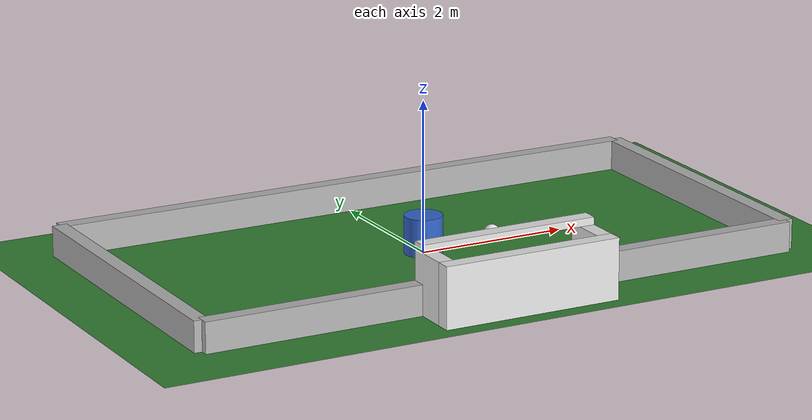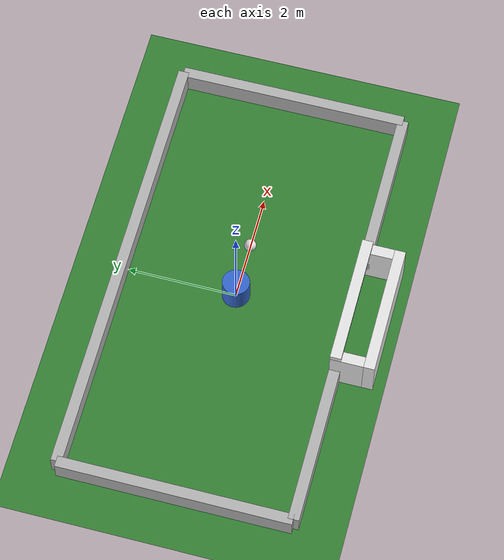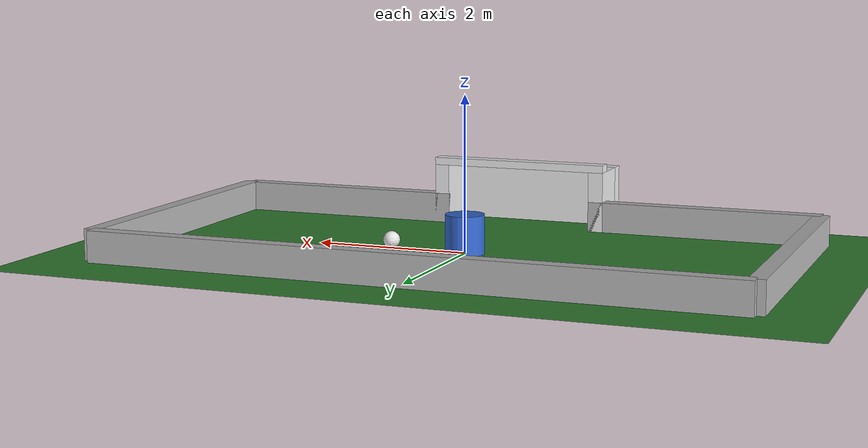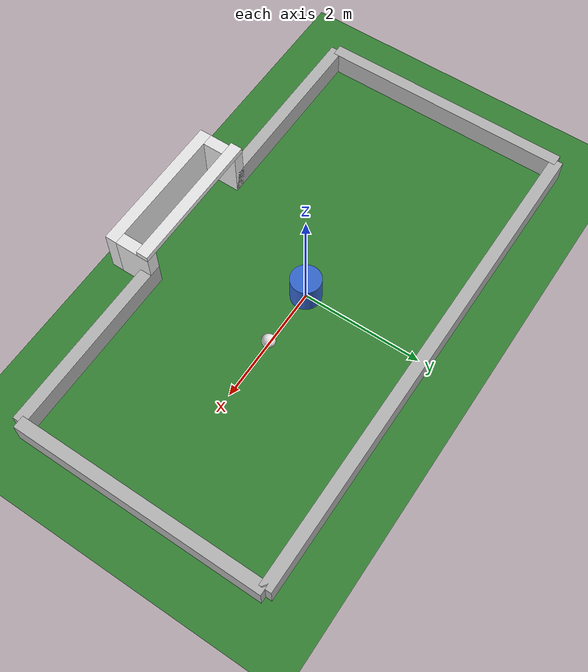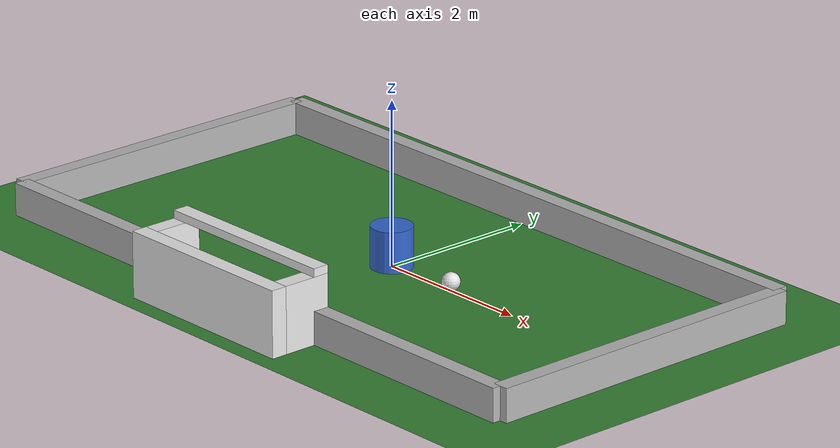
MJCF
<mujoco model="soccer_3d_cylinder">
  <option timestep="0.002" gravity="0 0 -9.81" integrator="implicitfast"/>

  <worldbody>
    <camera
      name="overview"
      pos="0 0 7"
      xyaxes="1 0 0 0 1 0"
      fovy="45"
    />

    <geom
      name="ground"
      type="plane"
      size="5 3 0.1"
      rgba="0.2 0.5 0.2 1"
    />

    <geom
      name="wall_left"
      type="box"
      pos="-4.1 0 0.2"
      size="0.1 2.1 0.2"
      rgba="0.7 0.7 0.7 1"
    />
    <geom
      name="wall_right"
      type="box"
      pos="4.1 0 0.2"
      size="0.1 2.1 0.2"
      rgba="0.7 0.7 0.7 1"
    />
    <geom
      name="wall_bottom_left"
      type="box"
      pos="-2.55 -2.1 0.2"
      size="1.55 0.1 0.2"
      rgba="0.7 0.7 0.7 1"
    />
    <geom
      name="wall_bottom_right"
      type="box"
      pos="2.55 -2.1 0.2"
      size="1.55 0.1 0.2"
      rgba="0.7 0.7 0.7 1"
    />
    <geom
      name="wall_top"
      type="box"
      pos="0 2.1 0.2"
      size="4.1 0.1 0.2"
      rgba="0.7 0.7 0.7 1"
    />

    <geom
      name="goal_left_side"
      type="box"
      pos="-1.1 -2.3 0.4"
      size="0.1 0.3 0.4"
      rgba="0.9 0.9 0.9 1"
    />
    <geom
      name="goal_right_side"
      type="box"
      pos="1.1 -2.3 0.4"
      size="0.1 0.3 0.4"
      rgba="0.9 0.9 0.9 1"
    />
    <geom
      name="goal_back"
      type="box"
      pos="0 -2.7 0.4"
      size="1.2 0.1 0.4"
      rgba="0.9 0.9 0.9 1"
    />
    <geom
      name="goal_crossbar"
      type="box"
      pos="0 -2.1 0.85"
      size="1.2 0.1 0.05"
      rgba="0.9 0.9 0.9 1"
    />

    <body name="agent" pos="0 0 0.25">
      <joint name="agent_x" type="slide" axis="1 0 0"/>
      <joint name="agent_y" type="slide" axis="0 1 0"/>
      <geom
        name="agent_geom"
        type="cylinder"
        size="0.25 0.25"
        mass="20"
        rgba="0.2 0.4 0.8 1"
      />
    </body>

    <body name="ball" pos="1 0 0.11">
      <freejoint name="ball_free"/>
      <geom
        name="ball_geom"
        type="sphere"
        size="0.11"
        mass="0.43"
        rgba="0.9 0.9 0.9 1"
      />
    </body>
  </worldbody>

  <actuator>
    <velocity
      name="agent_x_velocity"
      joint="agent_x"
      kv="100"
      ctrllimited="true"
      ctrlrange="-4 4"
      forcelimited="true"
      forcerange="-200 200"
    />
    <velocity
      name="agent_y_velocity"
      joint="agent_y"
      kv="100"
      ctrllimited="true"
      ctrlrange="-4 4"
      forcelimited="true"
      forcerange="-200 200"
    />
  </actuator>
</mujoco>
